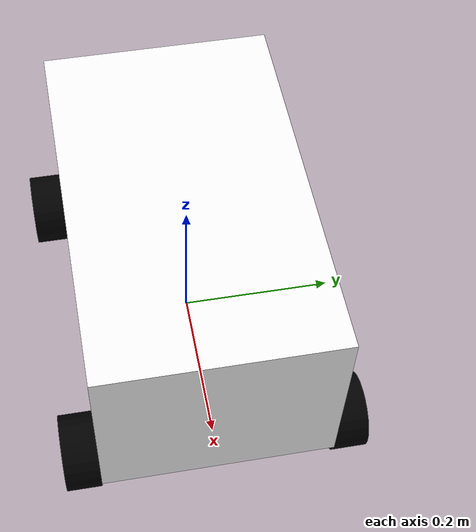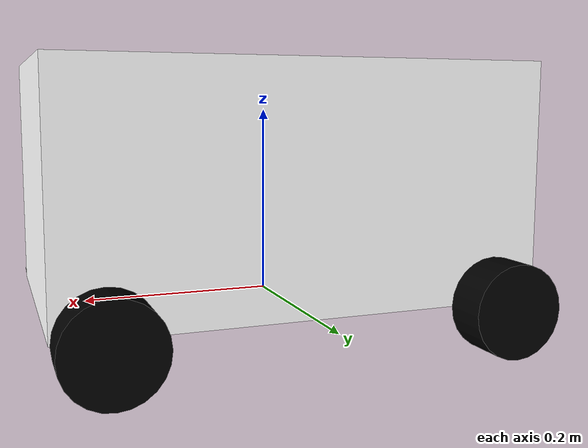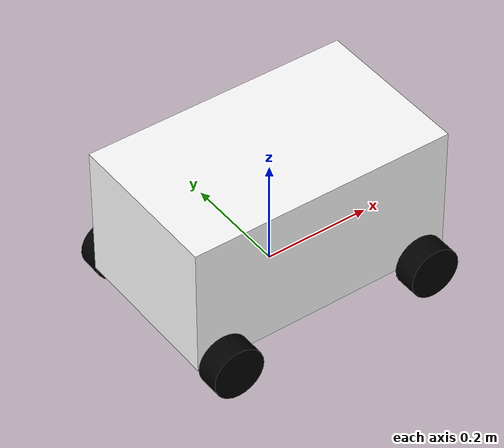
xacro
<?xml version="1.0"?>
<robot xmlns:xacro="http://www.ros.org/wiki/xacro">
    <xacro:include filename="inertial_macros.xacro"/>

    <xacro:property name="chassisX" value="0.5"/> <!--Chassis Length-->
    <xacro:property name="chassisY" value="0.3"/> <!--Chassis Width-->
    <xacro:property name="chassisZ" value="0.25"/> <!--Chassis Height-->
    <xacro:property name="BaseMass" value="6"/> <!-- Base mass = 6 kg -->
    <xacro:property name="MecanumRadius" value="0.0485"/> <!-- Mecanum wheel diameter = 97mm -->
    <xacro:property name="MecanumLength" value="0.045"/> <!-- Mecanum wheel thickness = 44.97 mm -->
    <xacro:property name="MecanumMass" value="0.25"/> <!-- Mecanum wheel mass = 0.25 kg-->

    <material name="black">
        <color rgba="0.0 0.0 0.0 1.0"/>
    </material>

    <material name="white">
        <color rgba="1.0 1.0 1.0 1.0"/>
    </material>

    <link name="base_link"></link> <!-- Base link is the origin of the robot, the center of mass and revolution -->

    <joint name="chassis_joint" type="fixed">
        <parent link="base_link"/>
        <child link="chassis"/>
        <origin xyz="${-chassisX/2} 0 0" rpy="0 0 0"/>
    </joint>

    <link name="chassis">
        <visual>
            <geometry>
                <box size="${chassisX} ${chassisY} ${chassisZ}"/>
            </geometry>

            <origin xyz="${chassisX/2} 0.0 ${chassisZ/2}"/> <!-- Chassis origin is the bottom center of the box -->
            <material name="white"/>
        </visual>

        <collision>
            <geometry>
                <box size="${chassisX} ${chassisY} ${chassisZ}"/>
            </geometry>
            <origin xyz="${chassisX/2} 0.0 ${chassisZ/2}"/> <!-- Chassis origin is the bottom center of the box -->
        </collision>

        <xacro:inertial_box mass="${BaseMass}" x="${chassisX}" y="${chassisY}" z="${chassisZ}">
            <origin xyz="${chassisX/2} 0.0 ${chassisZ/2}"/>
        </xacro:inertial_box>

    </link>

    <gazebo reference="chassis">
        <material>Gazebo/White</material>
    </gazebo>

    <joint name="front_left_wheel_joint" type="continuous">
        <parent link="base_link"/>
        <child link="front_left_wheel"/>
        <origin xyz="${-chassisX/2 + 0.9*chassisX} ${chassisY/2 + MecanumLength/2} 0.0" rpy="${-pi/2} 0 0"/> <!-- The origin of the wheel is the center of the cylinder -->
        <axis xyz="0.0 0.0 1.0"/> <!-- The axis of rotation of the wheel -->
    </joint>

    <link name="front_left_wheel">
        <visual>
            <geometry>
                <cylinder radius="${MecanumRadius}" length="${MecanumLength}"/>
            </geometry>
            <material name="black"/>
        </visual>

        <collision>
            <geometry>
                <cylinder radius="${MecanumRadius}" length="${MecanumLength}"/>
            </geometry>
        </collision>

        <xacro:inertial_cylinder mass="${MecanumMass}" radius="${MecanumRadius}" length="${MecanumLength}">
            <origin xyz="0.0 0.0 0.0"/>
        </xacro:inertial_cylinder>
    </link>

    <gazebo reference="front_left_wheel">
        <material>Gazebo/Black</material>
    </gazebo>

    <joint name="front_right_wheel_joint" type="continuous">
        <parent link="base_link"/>
        <child link="front_right_wheel"/>
        <origin xyz="${-chassisX/2 + 0.9*chassisX} ${-chassisY/2 - MecanumLength/2} 0.0" rpy="${pi/2} 0 0"/> <!-- The origin of the wheel is the center of the cylinder -->
        <axis xyz="0.0 0.0 -1.0"/> <!-- The axis of rotation of the wheel -->
    </joint>

    <link name="front_right_wheel">
        <visual>
            <geometry>
                <cylinder radius="${MecanumRadius}" length="${MecanumLength}"/>
            </geometry>
            <material name="black"/>
        </visual>

        <collision>
            <geometry>
                <cylinder radius="${MecanumRadius}" length="${MecanumLength}"/>
            </geometry>
        </collision>

        <xacro:inertial_cylinder mass="${MecanumMass}" radius="${MecanumRadius}" length="${MecanumLength}">
            <origin xyz="0.0 0.0 0.0"/>
        </xacro:inertial_cylinder>
    </link>

    <gazebo reference="front_right_wheel">
        <material>Gazebo/Black</material>
    </gazebo>

    <joint name="back_left_wheel_joint" type="continuous">
        <parent link="base_link"/>
        <child link="back_left_wheel"/>
        <origin xyz="${chassisX/2 - 0.9*chassisX} ${chassisY/2 + MecanumLength/2} 0.0" rpy="${-pi/2} 0 0"/> <!-- The origin of the wheel is the center of the cylinder -->
        <axis xyz="0.0 0.0 1.0"/> <!-- The axis of rotation of the wheel -->
    </joint>

    <link name="back_left_wheel">
        <visual>
            <geometry>
                <cylinder radius="${MecanumRadius}" length="${MecanumLength}"/>
            </geometry>
            <material name="black"/>
        </visual>

        <collision>
            <geometry>
                <cylinder radius="${MecanumRadius}" length="${MecanumLength}"/>
            </geometry>
        </collision>

        <xacro:inertial_cylinder mass="${MecanumMass}" radius="${MecanumRadius}" length="${MecanumLength}">
            <origin xyz="0.0 0.0 0.0"/>
        </xacro:inertial_cylinder>
    </link>

    <gazebo reference="back_left_wheel">
        <material>Gazebo/Black</material>
    </gazebo>

    <joint name="back_right_wheel_joint" type="continuous">
        <parent link="base_link"/>
        <child link="back_right_wheel"/>
        <origin xyz="${chassisX/2 - 0.9*chassisX} ${-chassisY/2 - MecanumLength/2} 0.0" rpy="${pi/2} 0 0"/> <!-- The origin of the wheel is the center of the cylinder -->
        <axis xyz="0.0 0.0 -1.0"/> <!-- The axis of rotation of the wheel -->
    </joint>

    <link name="back_right_wheel">
        <visual>
            <geometry>
                <cylinder radius="${MecanumRadius}" length="${MecanumLength}"/>
            </geometry>
            <material name="black"/>
        </visual>

        <collision>
            <geometry>
                <cylinder radius="${MecanumRadius}" length="${MecanumLength}"/>
            </geometry>
        </collision>

        <xacro:inertial_cylinder mass="${MecanumMass}" radius="${MecanumRadius}" length="${MecanumLength}">
            <origin xyz="0.0 0.0 0.0"/>
        </xacro:inertial_cylinder>
    </link>

    <gazebo reference="back_right_wheel">
        <material>Gazebo/Black</material>
    </gazebo>

</robot>
